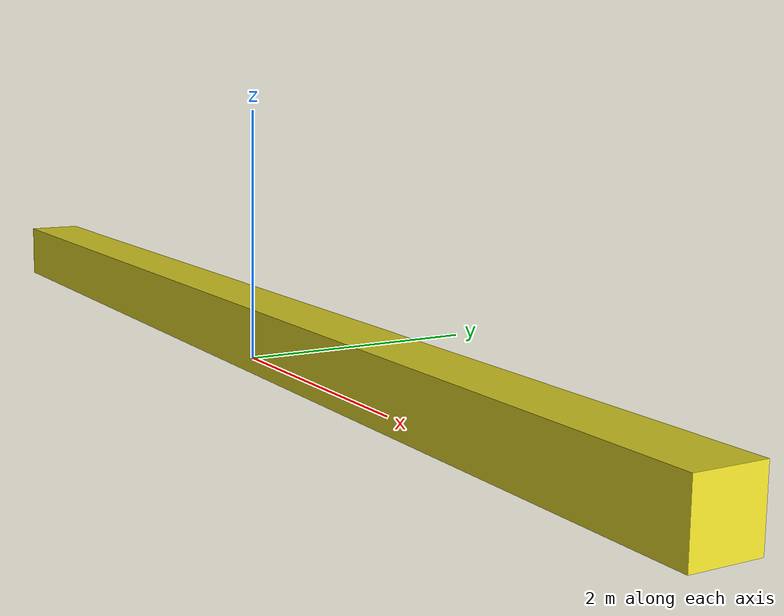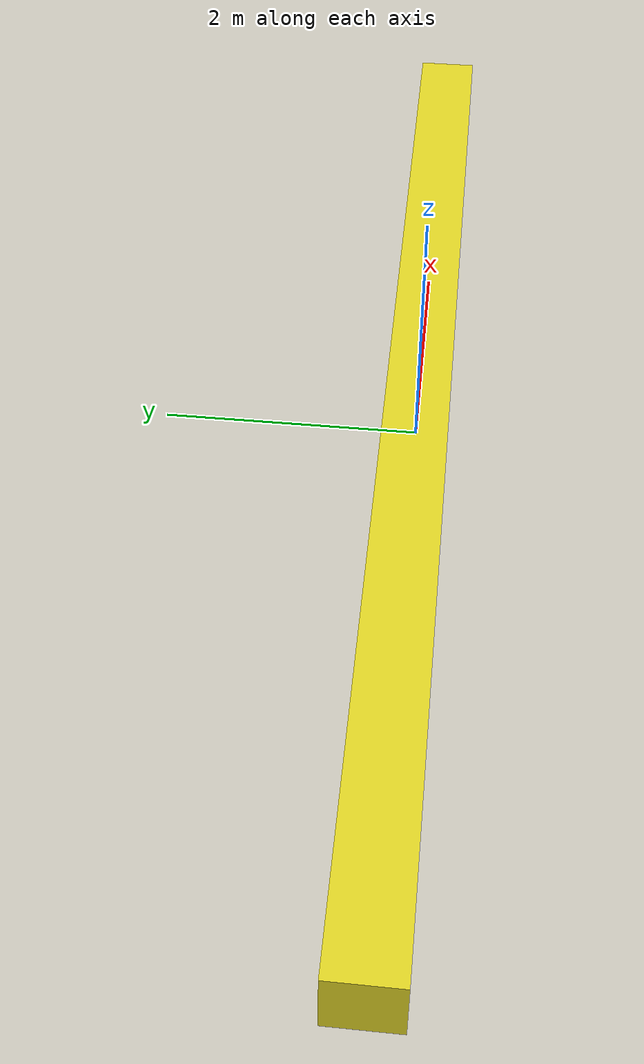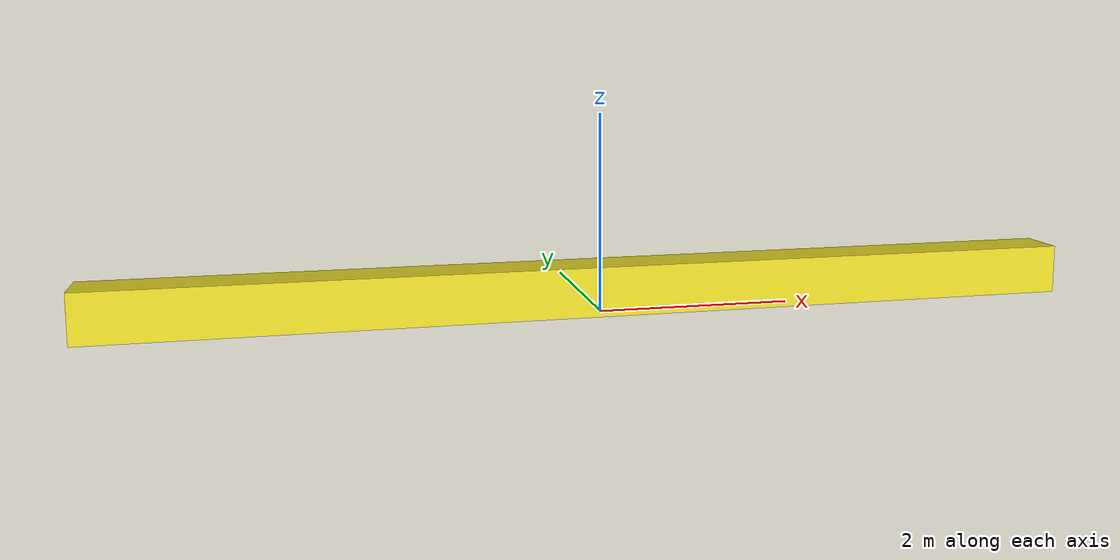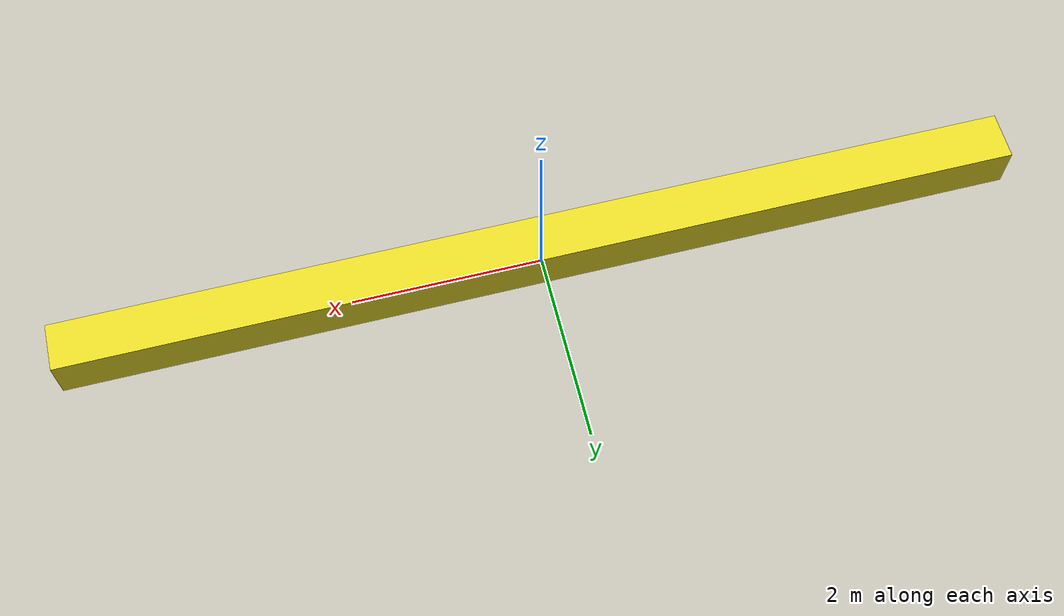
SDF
<sdf version='1.6'>
<model name='measuring_rod_10'>
  <static>true</static>
  <pose frame=''>0 0 0 0 -0 0</pose>
  <link name='link'>
    <pose frame=''>0 0 0.25 0 -0 0</pose>
    <inertial>
      <mass>1000</mass>
      <inertia>
        <ixx>0.166667</ixx>
        <ixy>0</ixy>
        <ixz>0</ixz>
        <iyy>0.166667</iyy>
        <iyz>0</iyz>
        <izz>0.166667</izz>
      </inertia>
    </inertial>
    <collision name='collision'>
      <geometry>
        <box>
          <size>10 .5 .5</size>
        </box>
      </geometry>
      <max_contacts>10</max_contacts>
      <surface>
        <contact>
          <ode/>
        </contact>
        <bounce/>
        <friction>
          <torsional>
            <ode/>
          </torsional>
          <ode/>
        </friction>
      </surface>
    </collision>
    <visual name='visual'>
      <geometry>
        <box>
          <size>10 .5 .5</size>
        </box>
      </geometry>
      <material>
        <script>
          <name>Gazebo/Yellow</name>
          <uri>file://media/materials/scripts/gazebo.material</uri>
        </script>
      </material>
    </visual>
    <self_collide>0</self_collide>
    <kinematic>0</kinematic>
  </link>
</model>
</sdf>

<!-- Spawn with the following command: rosrun gazebo_ros spawn_model -sdf -file /home/justin/catkin_ws/src/navigation_test/configs/models/measuring_rod.sdf -model rod -x 1
 -->
